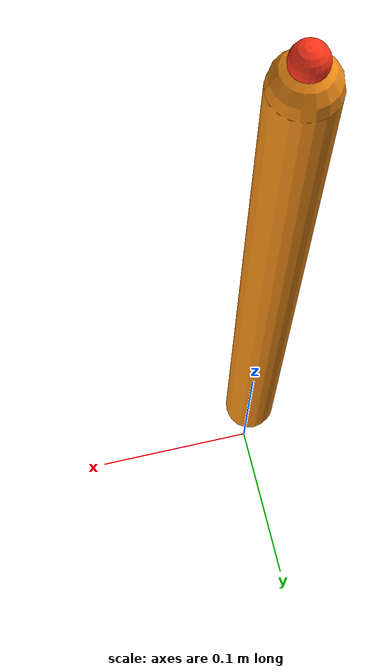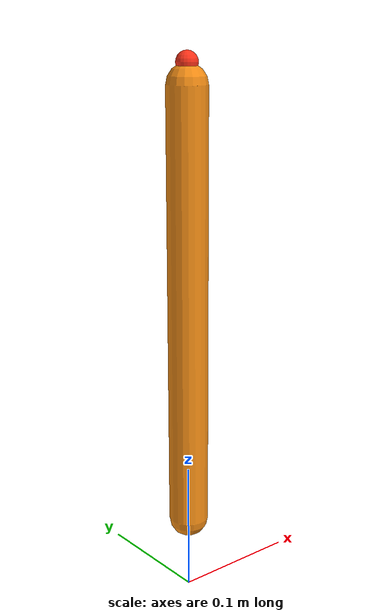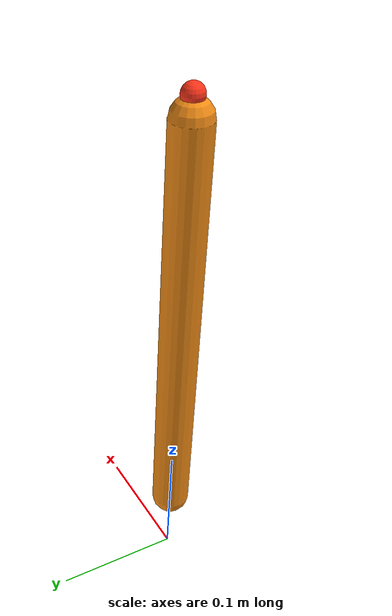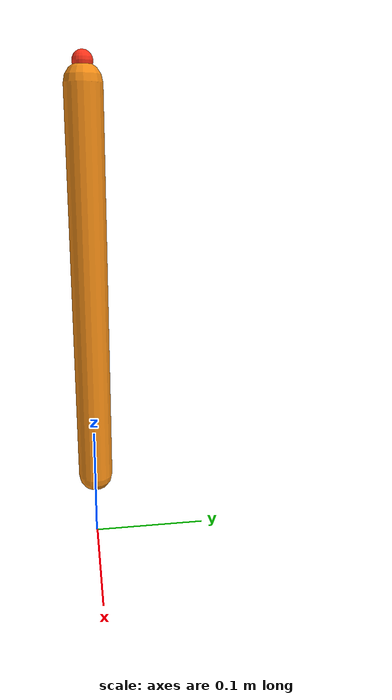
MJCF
<mujoco model="fr3 push tool">
  <!-- scene_builder injects this body under the existing FR3 hand body. -->
  <worldbody>
    <body name="push_tool">
      <geom name="push_tool_geom" type="capsule"
        fromto="0 0 0.06 0 0 0.39" size="0.015"
        mass="0.08" friction="0.9 0.02 0.002" rgba="0.95 0.55 0.08 1"/>
      <site name="push_tool_tip" pos="0 0 0.405" size="0.008"
        rgba="1 0.2 0.1 1"/>
    </body>
  </worldbody>

  <contact>
    <exclude body1="push_tool" body2="fr3_hand"/>
    <exclude body1="push_tool" body2="fr3_left_finger"/>
    <exclude body1="push_tool" body2="fr3_right_finger"/>
  </contact>
</mujoco>
